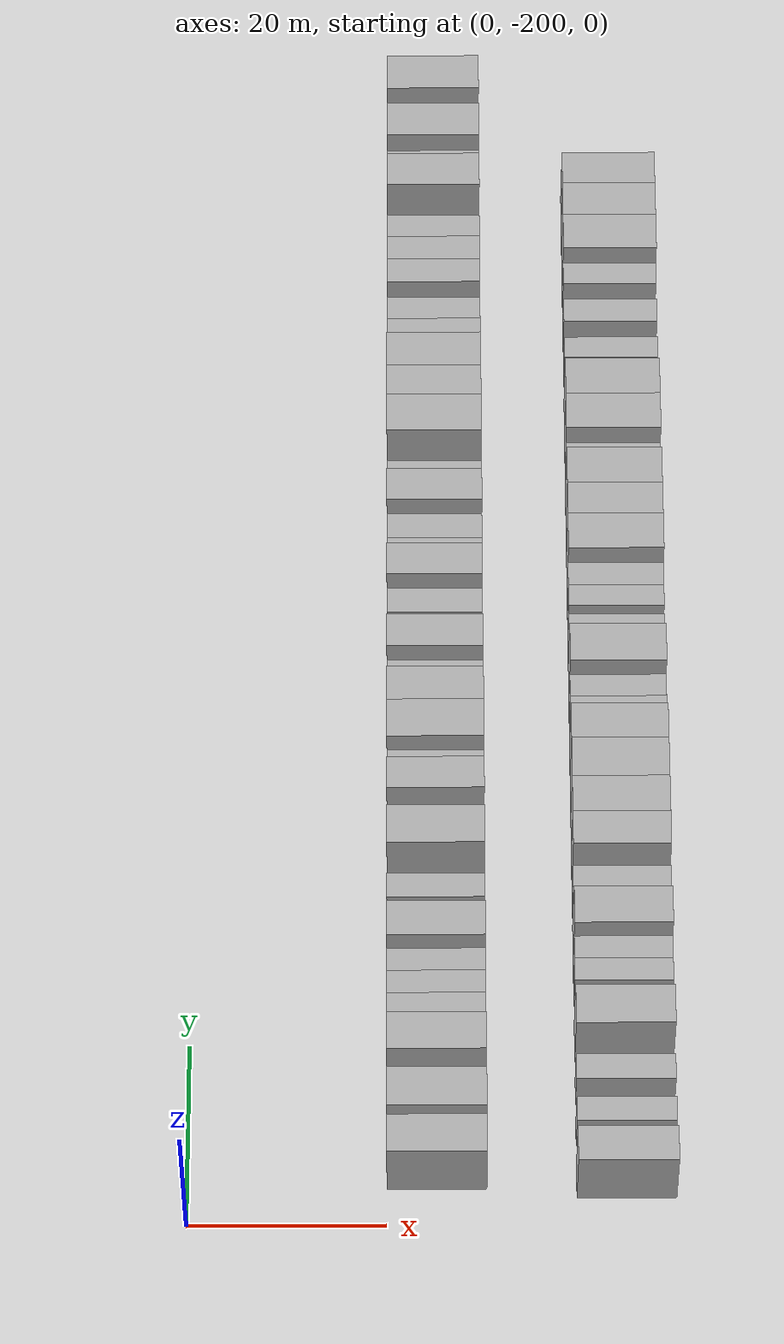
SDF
<sdf version="1.6">
 <world name="default">
  <model name="building_1">
   <static>1</static>
   <pose>25.0000 -193.9581 0 0.000000 0.000000 0.000000</pose>
   <link name="link">
    <pose>0 0 4.50 0 0 0</pose>
    <collision name="collision"><geometry><box><size>10.0000 4.0837 9.0000</size></box></geometry></collision>
    <visual name="visual">
     <cast_shadows>0</cast_shadows>
     <geometry><box><size>10.0000 4.0837 9.0000</size></box></geometry>
     <material>
      <script>
       <uri>model://HANNAS_wall/materials/scripts</uri>
       <uri>model://HANNAS_wall/materials/textures</uri>
       <name>vrc/HANNAS_wall</name>
      </script>
     </material>
    </visual>
   </link>
  </model>
  <model name="building_2">
   <static>1</static>
   <pose>25.0000 -188.7889 0 0.000000 0.000000 0.000000</pose>
   <link name="link">
    <pose>0 0 4.50 0 0 0</pose>
    <collision name="collision"><geometry><box><size>10.0000 4.2548 9.0000</size></box></geometry></collision>
    <visual name="visual">
     <cast_shadows>0</cast_shadows>
     <geometry><box><size>10.0000 4.2548 9.0000</size></box></geometry>
     <material>
      <script>
       <uri>model://HANNAS_wall/materials/scripts</uri>
       <uri>model://HANNAS_wall/materials/textures</uri>
       <name>vrc/HANNAS_wall</name>
      </script>
     </material>
    </visual>
   </link>
  </model>
  <model name="building_3">
   <static>1</static>
   <pose>25.0000 -182.6277 0 0.000000 0.000000 0.000000</pose>
   <link name="link">
    <pose>0 0 4.50 0 0 0</pose>
    <collision name="collision"><geometry><box><size>10.0000 4.0676 9.0000</size></box></geometry></collision>
    <visual name="visual">
     <cast_shadows>0</cast_shadows>
     <geometry><box><size>10.0000 4.0676 9.0000</size></box></geometry>
     <material>
      <script>
       <uri>model://HANNAS_wall/materials/scripts</uri>
       <uri>model://HANNAS_wall/materials/textures</uri>
       <name>vrc/HANNAS_wall</name>
      </script>
     </material>
    </visual>
   </link>
  </model>
  <model name="building_4">
   <static>1</static>
   <pose>25.0000 -178.2553 0 0.000000 0.000000 0.000000</pose>
   <link name="link">
    <pose>0 0 3.00 0 0 0</pose>
    <collision name="collision"><geometry><box><size>10.0000 2.6771 6.0000</size></box></geometry></collision>
    <visual name="visual">
     <cast_shadows>0</cast_shadows>
     <geometry><box><size>10.0000 2.6771 6.0000</size></box></geometry>
     <material>
      <script>
       <uri>model://HANNAS_wall/materials/scripts</uri>
       <uri>model://HANNAS_wall/materials/textures</uri>
       <name>vrc/HANNAS_wall</name>
      </script>
     </material>
    </visual>
   </link>
  </model>
  <model name="building_5">
   <static>1</static>
   <pose>25.0000 -175.6578 0 0.000000 0.000000 0.000000</pose>
   <link name="link">
    <pose>0 0 3.00 0 0 0</pose>
    <collision name="collision"><geometry><box><size>10.0000 2.5181 6.0000</size></box></geometry></collision>
    <visual name="visual">
     <cast_shadows>0</cast_shadows>
     <geometry><box><size>10.0000 2.5181 6.0000</size></box></geometry>
     <material>
      <script>
       <uri>model://HANNAS_wall/materials/scripts</uri>
       <uri>model://HANNAS_wall/materials/textures</uri>
       <name>vrc/HANNAS_wall</name>
      </script>
     </material>
    </visual>
   </link>
  </model>
  <model name="building_6">
   <static>1</static>
   <pose>25.0000 -173.1429 0 0.000000 0.000000 0.000000</pose>
   <link name="link">
    <pose>0 0 3.00 0 0 0</pose>
    <collision name="collision"><geometry><box><size>10.0000 2.5117 6.0000</size></box></geometry></collision>
    <visual name="visual">
     <cast_shadows>0</cast_shadows>
     <geometry><box><size>10.0000 2.5117 6.0000</size></box></geometry>
     <material>
      <script>
       <uri>model://HANNAS_wall/materials/scripts</uri>
       <uri>model://HANNAS_wall/materials/textures</uri>
       <name>vrc/HANNAS_wall</name>
      </script>
     </material>
    </visual>
   </link>
  </model>
  <model name="building_7">
   <static>1</static>
   <pose>25.0000 -169.9557 0 0.000000 0.000000 0.000000</pose>
   <link name="link">
    <pose>0 0 4.50 0 0 0</pose>
    <collision name="collision"><geometry><box><size>10.0000 3.8626 9.0000</size></box></geometry></collision>
    <visual name="visual">
     <cast_shadows>0</cast_shadows>
     <geometry><box><size>10.0000 3.8626 9.0000</size></box></geometry>
     <material>
      <script>
       <uri>model://HANNAS_wall/materials/scripts</uri>
       <uri>model://HANNAS_wall/materials/textures</uri>
       <name>vrc/HANNAS_wall</name>
      </script>
     </material>
    </visual>
   </link>
  </model>
  <model name="building_8">
   <static>1</static>
   <pose>25.0000 -164.6663 0 0.000000 0.000000 0.000000</pose>
   <link name="link">
    <pose>0 0 3.00 0 0 0</pose>
    <collision name="collision"><geometry><box><size>10.0000 2.7162 6.0000</size></box></geometry></collision>
    <visual name="visual">
     <cast_shadows>0</cast_shadows>
     <geometry><box><size>10.0000 2.7162 6.0000</size></box></geometry>
     <material>
      <script>
       <uri>model://HANNAS_wall/materials/scripts</uri>
       <uri>model://HANNAS_wall/materials/textures</uri>
       <name>vrc/HANNAS_wall</name>
      </script>
     </material>
    </visual>
   </link>
  </model>
  <model name="building_9">
   <static>1</static>
   <pose>25.0000 -159.1371 0 0.000000 0.000000 0.000000</pose>
   <link name="link">
    <pose>0 0 4.50 0 0 0</pose>
    <collision name="collision"><geometry><box><size>10.0000 4.3422 9.0000</size></box></geometry></collision>
    <visual name="visual">
     <cast_shadows>0</cast_shadows>
     <geometry><box><size>10.0000 4.3422 9.0000</size></box></geometry>
     <material>
      <script>
       <uri>model://HANNAS_wall/materials/scripts</uri>
       <uri>model://HANNAS_wall/materials/textures</uri>
       <name>vrc/HANNAS_wall</name>
      </script>
     </material>
    </visual>
   </link>
  </model>
  <model name="building_10">
   <static>1</static>
   <pose>25.0000 -153.1617 0 0.000000 0.000000 0.000000</pose>
   <link name="link">
    <pose>0 0 4.50 0 0 0</pose>
    <collision name="collision"><geometry><box><size>10.0000 3.6087 9.0000</size></box></geometry></collision>
    <visual name="visual">
     <cast_shadows>0</cast_shadows>
     <geometry><box><size>10.0000 3.6087 9.0000</size></box></geometry>
     <material>
      <script>
       <uri>model://HANNAS_wall/materials/scripts</uri>
       <uri>model://HANNAS_wall/materials/textures</uri>
       <name>vrc/HANNAS_wall</name>
      </script>
     </material>
    </visual>
   </link>
  </model>
  <model name="building_11">
   <static>1</static>
   <pose>25.0000 -150.1485 0 0.000000 0.000000 0.000000</pose>
   <link name="link">
    <pose>0 0 3.00 0 0 0</pose>
    <collision name="collision"><geometry><box><size>10.0000 2.4176 6.0000</size></box></geometry></collision>
    <visual name="visual">
     <cast_shadows>0</cast_shadows>
     <geometry><box><size>10.0000 2.4176 6.0000</size></box></geometry>
     <material>
      <script>
       <uri>model://HANNAS_wall/materials/scripts</uri>
       <uri>model://HANNAS_wall/materials/textures</uri>
       <name>vrc/HANNAS_wall</name>
      </script>
     </material>
    </visual>
   </link>
  </model>
  <model name="building_12">
   <static>1</static>
   <pose>25.0000 -146.7656 0 0.000000 0.000000 0.000000</pose>
   <link name="link">
    <pose>0 0 4.50 0 0 0</pose>
    <collision name="collision"><geometry><box><size>10.0000 4.3481 9.0000</size></box></geometry></collision>
    <visual name="visual">
     <cast_shadows>0</cast_shadows>
     <geometry><box><size>10.0000 4.3481 9.0000</size></box></geometry>
     <material>
      <script>
       <uri>model://HANNAS_wall/materials/scripts</uri>
       <uri>model://HANNAS_wall/materials/textures</uri>
       <name>vrc/HANNAS_wall</name>
      </script>
     </material>
    </visual>
   </link>
  </model>
  <model name="building_13">
   <static>1</static>
   <pose>25.0000 -142.6385 0 0.000000 0.000000 0.000000</pose>
   <link name="link">
    <pose>0 0 4.50 0 0 0</pose>
    <collision name="collision"><geometry><box><size>10.0000 3.9062 9.0000</size></box></geometry></collision>
    <visual name="visual">
     <cast_shadows>0</cast_shadows>
     <geometry><box><size>10.0000 3.9062 9.0000</size></box></geometry>
     <material>
      <script>
       <uri>model://HANNAS_wall/materials/scripts</uri>
       <uri>model://HANNAS_wall/materials/textures</uri>
       <name>vrc/HANNAS_wall</name>
      </script>
     </material>
    </visual>
   </link>
  </model>
  <model name="building_14">
   <static>1</static>
   <pose>25.0000 -139.4596 0 0.000000 0.000000 0.000000</pose>
   <link name="link">
    <pose>0 0 3.00 0 0 0</pose>
    <collision name="collision"><geometry><box><size>10.0000 2.4516 6.0000</size></box></geometry></collision>
    <visual name="visual">
     <cast_shadows>0</cast_shadows>
     <geometry><box><size>10.0000 2.4516 6.0000</size></box></geometry>
     <material>
      <script>
       <uri>model://HANNAS_wall/materials/scripts</uri>
       <uri>model://HANNAS_wall/materials/textures</uri>
       <name>vrc/HANNAS_wall</name>
      </script>
     </material>
    </visual>
   </link>
  </model>
  <model name="building_15">
   <static>1</static>
   <pose>25.0000 -136.3503 0 0.000000 0.000000 0.000000</pose>
   <link name="link">
    <pose>0 0 4.50 0 0 0</pose>
    <collision name="collision"><geometry><box><size>10.0000 3.7671 9.0000</size></box></geometry></collision>
    <visual name="visual">
     <cast_shadows>0</cast_shadows>
     <geometry><box><size>10.0000 3.7671 9.0000</size></box></geometry>
     <material>
      <script>
       <uri>model://HANNAS_wall/materials/scripts</uri>
       <uri>model://HANNAS_wall/materials/textures</uri>
       <name>vrc/HANNAS_wall</name>
      </script>
     </material>
    </visual>
   </link>
  </model>
  <model name="building_16">
   <static>1</static>
   <pose>25.0000 -131.0137 0 0.000000 0.000000 0.000000</pose>
   <link name="link">
    <pose>0 0 3.00 0 0 0</pose>
    <collision name="collision"><geometry><box><size>10.0000 2.9060 6.0000</size></box></geometry></collision>
    <visual name="visual">
     <cast_shadows>0</cast_shadows>
     <geometry><box><size>10.0000 2.9060 6.0000</size></box></geometry>
     <material>
      <script>
       <uri>model://HANNAS_wall/materials/scripts</uri>
       <uri>model://HANNAS_wall/materials/textures</uri>
       <name>vrc/HANNAS_wall</name>
      </script>
     </material>
    </visual>
   </link>
  </model>
  <model name="building_17">
   <static>1</static>
   <pose>25.0000 -127.7043 0 0.000000 0.000000 0.000000</pose>
   <link name="link">
    <pose>0 0 4.50 0 0 0</pose>
    <collision name="collision"><geometry><box><size>10.0000 3.7127 9.0000</size></box></geometry></collision>
    <visual name="visual">
     <cast_shadows>0</cast_shadows>
     <geometry><box><size>10.0000 3.7127 9.0000</size></box></geometry>
     <material>
      <script>
       <uri>model://HANNAS_wall/materials/scripts</uri>
       <uri>model://HANNAS_wall/materials/textures</uri>
       <name>vrc/HANNAS_wall</name>
      </script>
     </material>
    </visual>
   </link>
  </model>
  <model name="building_18">
   <static>1</static>
   <pose>25.0000 -124.6156 0 0.000000 0.000000 0.000000</pose>
   <link name="link">
    <pose>0 0 3.00 0 0 0</pose>
    <collision name="collision"><geometry><box><size>10.0000 2.4646 6.0000</size></box></geometry></collision>
    <visual name="visual">
     <cast_shadows>0</cast_shadows>
     <geometry><box><size>10.0000 2.4646 6.0000</size></box></geometry>
     <material>
      <script>
       <uri>model://HANNAS_wall/materials/scripts</uri>
       <uri>model://HANNAS_wall/materials/textures</uri>
       <name>vrc/HANNAS_wall</name>
      </script>
     </material>
    </visual>
   </link>
  </model>
  <model name="building_19">
   <static>1</static>
   <pose>25.0000 -121.9434 0 0.000000 0.000000 0.000000</pose>
   <link name="link">
    <pose>0 0 3.00 0 0 0</pose>
    <collision name="collision"><geometry><box><size>10.0000 2.8798 6.0000</size></box></geometry></collision>
    <visual name="visual">
     <cast_shadows>0</cast_shadows>
     <geometry><box><size>10.0000 2.8798 6.0000</size></box></geometry>
     <material>
      <script>
       <uri>model://HANNAS_wall/materials/scripts</uri>
       <uri>model://HANNAS_wall/materials/textures</uri>
       <name>vrc/HANNAS_wall</name>
      </script>
     </material>
    </visual>
   </link>
  </model>
  <model name="building_20">
   <static>1</static>
   <pose>25.0000 -118.6147 0 0.000000 0.000000 0.000000</pose>
   <link name="link">
    <pose>0 0 4.50 0 0 0</pose>
    <collision name="collision"><geometry><box><size>10.0000 3.7776 9.0000</size></box></geometry></collision>
    <visual name="visual">
     <cast_shadows>0</cast_shadows>
     <geometry><box><size>10.0000 3.7776 9.0000</size></box></geometry>
     <material>
      <script>
       <uri>model://HANNAS_wall/materials/scripts</uri>
       <uri>model://HANNAS_wall/materials/textures</uri>
       <name>vrc/HANNAS_wall</name>
      </script>
     </material>
    </visual>
   </link>
  </model>
  <model name="building_21">
   <static>1</static>
   <pose>25.0000 -115.3220 0 0.000000 0.000000 0.000000</pose>
   <link name="link">
    <pose>0 0 3.00 0 0 0</pose>
    <collision name="collision"><geometry><box><size>10.0000 2.8077 6.0000</size></box></geometry></collision>
    <visual name="visual">
     <cast_shadows>0</cast_shadows>
     <geometry><box><size>10.0000 2.8077 6.0000</size></box></geometry>
     <material>
      <script>
       <uri>model://HANNAS_wall/materials/scripts</uri>
       <uri>model://HANNAS_wall/materials/textures</uri>
       <name>vrc/HANNAS_wall</name>
      </script>
     </material>
    </visual>
   </link>
  </model>
  <model name="building_22">
   <static>1</static>
   <pose>25.0000 -109.6682 0 0.000000 0.000000 0.000000</pose>
   <link name="link">
    <pose>0 0 4.50 0 0 0</pose>
    <collision name="collision"><geometry><box><size>10.0000 4.4999 9.0000</size></box></geometry></collision>
    <visual name="visual">
     <cast_shadows>0</cast_shadows>
     <geometry><box><size>10.0000 4.4999 9.0000</size></box></geometry>
     <material>
      <script>
       <uri>model://HANNAS_wall/materials/scripts</uri>
       <uri>model://HANNAS_wall/materials/textures</uri>
       <name>vrc/HANNAS_wall</name>
      </script>
     </material>
    </visual>
   </link>
  </model>
  <model name="building_23">
   <static>1</static>
   <pose>25.0000 -105.5826 0 0.000000 0.000000 0.000000</pose>
   <link name="link">
    <pose>0 0 4.50 0 0 0</pose>
    <collision name="collision"><geometry><box><size>10.0000 3.6711 9.0000</size></box></geometry></collision>
    <visual name="visual">
     <cast_shadows>0</cast_shadows>
     <geometry><box><size>10.0000 3.6711 9.0000</size></box></geometry>
     <material>
      <script>
       <uri>model://HANNAS_wall/materials/scripts</uri>
       <uri>model://HANNAS_wall/materials/textures</uri>
       <name>vrc/HANNAS_wall</name>
      </script>
     </material>
    </visual>
   </link>
  </model>
  <model name="building_24">
   <static>1</static>
   <pose>25.0000 -101.6881 0 0.000000 0.000000 0.000000</pose>
   <link name="link">
    <pose>0 0 4.50 0 0 0</pose>
    <collision name="collision"><geometry><box><size>10.0000 4.1179 9.0000</size></box></geometry></collision>
    <visual name="visual">
     <cast_shadows>0</cast_shadows>
     <geometry><box><size>10.0000 4.1179 9.0000</size></box></geometry>
     <material>
      <script>
       <uri>model://HANNAS_wall/materials/scripts</uri>
       <uri>model://HANNAS_wall/materials/textures</uri>
       <name>vrc/HANNAS_wall</name>
      </script>
     </material>
    </visual>
   </link>
  </model>
  <model name="building_25">
   <static>1</static>
   <pose>25.0000 -97.2789 0 0.000000 0.000000 0.000000</pose>
   <link name="link">
    <pose>0 0 3.00 0 0 0</pose>
    <collision name="collision"><geometry><box><size>10.0000 2.7006 6.0000</size></box></geometry></collision>
    <visual name="visual">
     <cast_shadows>0</cast_shadows>
     <geometry><box><size>10.0000 2.7006 6.0000</size></box></geometry>
     <material>
      <script>
       <uri>model://HANNAS_wall/materials/scripts</uri>
       <uri>model://HANNAS_wall/materials/textures</uri>
       <name>vrc/HANNAS_wall</name>
      </script>
     </material>
    </visual>
   </link>
  </model>
  <model name="building_26">
   <static>1</static>
   <pose>25.0000 -94.5722 0 0.000000 0.000000 0.000000</pose>
   <link name="link">
    <pose>0 0 3.00 0 0 0</pose>
    <collision name="collision"><geometry><box><size>10.0000 2.7128 6.0000</size></box></geometry></collision>
    <visual name="visual">
     <cast_shadows>0</cast_shadows>
     <geometry><box><size>10.0000 2.7128 6.0000</size></box></geometry>
     <material>
      <script>
       <uri>model://HANNAS_wall/materials/scripts</uri>
       <uri>model://HANNAS_wall/materials/textures</uri>
       <name>vrc/HANNAS_wall</name>
      </script>
     </material>
    </visual>
   </link>
  </model>
  <model name="building_27">
   <static>1</static>
   <pose>25.0000 -89.7461 0 0.000000 0.000000 0.000000</pose>
   <link name="link">
    <pose>0 0 3.00 0 0 0</pose>
    <collision name="collision"><geometry><box><size>10.0000 2.9394 6.0000</size></box></geometry></collision>
    <visual name="visual">
     <cast_shadows>0</cast_shadows>
     <geometry><box><size>10.0000 2.9394 6.0000</size></box></geometry>
     <material>
      <script>
       <uri>model://HANNAS_wall/materials/scripts</uri>
       <uri>model://HANNAS_wall/materials/textures</uri>
       <name>vrc/HANNAS_wall</name>
      </script>
     </material>
    </visual>
   </link>
  </model>
  <model name="building_28">
   <static>1</static>
   <pose>25.0000 -86.8106 0 0.000000 0.000000 0.000000</pose>
   <link name="link">
    <pose>0 0 3.00 0 0 0</pose>
    <collision name="collision"><geometry><box><size>10.0000 2.9317 6.0000</size></box></geometry></collision>
    <visual name="visual">
     <cast_shadows>0</cast_shadows>
     <geometry><box><size>10.0000 2.9317 6.0000</size></box></geometry>
     <material>
      <script>
       <uri>model://HANNAS_wall/materials/scripts</uri>
       <uri>model://HANNAS_wall/materials/textures</uri>
       <name>vrc/HANNAS_wall</name>
      </script>
     </material>
    </visual>
   </link>
  </model>
  <model name="building_29">
   <static>1</static>
   <pose>25.0000 -83.9705 0 0.000000 0.000000 0.000000</pose>
   <link name="link">
    <pose>0 0 3.00 0 0 0</pose>
    <collision name="collision"><geometry><box><size>10.0000 2.7484 6.0000</size></box></geometry></collision>
    <visual name="visual">
     <cast_shadows>0</cast_shadows>
     <geometry><box><size>10.0000 2.7484 6.0000</size></box></geometry>
     <material>
      <script>
       <uri>model://HANNAS_wall/materials/scripts</uri>
       <uri>model://HANNAS_wall/materials/textures</uri>
       <name>vrc/HANNAS_wall</name>
      </script>
     </material>
    </visual>
   </link>
  </model>
  <model name="building_30">
   <static>1</static>
   <pose>25.0000 -78.5690 0 0.000000 0.000000 0.000000</pose>
   <link name="link">
    <pose>0 0 4.50 0 0 0</pose>
    <collision name="collision"><geometry><box><size>10.0000 4.0546 9.0000</size></box></geometry></collision>
    <visual name="visual">
     <cast_shadows>0</cast_shadows>
     <geometry><box><size>10.0000 4.0546 9.0000</size></box></geometry>
     <material>
      <script>
       <uri>model://HANNAS_wall/materials/scripts</uri>
       <uri>model://HANNAS_wall/materials/textures</uri>
       <name>vrc/HANNAS_wall</name>
      </script>
     </material>
    </visual>
   </link>
  </model>
  <model name="building_31">
   <static>1</static>
   <pose>25.0000 -75.3342 0 0.000000 0.000000 0.000000</pose>
   <link name="link">
    <pose>0 0 3.00 0 0 0</pose>
    <collision name="collision"><geometry><box><size>10.0000 2.4149 6.0000</size></box></geometry></collision>
    <visual name="visual">
     <cast_shadows>0</cast_shadows>
     <geometry><box><size>10.0000 2.4149 6.0000</size></box></geometry>
     <material>
      <script>
       <uri>model://HANNAS_wall/materials/scripts</uri>
       <uri>model://HANNAS_wall/materials/textures</uri>
       <name>vrc/HANNAS_wall</name>
      </script>
     </material>
    </visual>
   </link>
  </model>
  <model name="building_32">
   <static>1</static>
   <pose>25.0000 -72.0276 0 0.000000 0.000000 0.000000</pose>
   <link name="link">
    <pose>0 0 4.50 0 0 0</pose>
    <collision name="collision"><geometry><box><size>10.0000 4.1984 9.0000</size></box></geometry></collision>
    <visual name="visual">
     <cast_shadows>0</cast_shadows>
     <geometry><box><size>10.0000 4.1984 9.0000</size></box></geometry>
     <material>
      <script>
       <uri>model://HANNAS_wall/materials/scripts</uri>
       <uri>model://HANNAS_wall/materials/textures</uri>
       <name>vrc/HANNAS_wall</name>
      </script>
     </material>
    </visual>
   </link>
  </model>
  <model name="building_33">
   <static>1</static>
   <pose>25.0000 -65.7691 0 0.000000 0.000000 0.000000</pose>
   <link name="link">
    <pose>0 0 4.50 0 0 0</pose>
    <collision name="collision"><geometry><box><size>10.0000 4.3185 9.0000</size></box></geometry></collision>
    <visual name="visual">
     <cast_shadows>0</cast_shadows>
     <geometry><box><size>10.0000 4.3185 9.0000</size></box></geometry>
     <material>
      <script>
       <uri>model://HANNAS_wall/materials/scripts</uri>
       <uri>model://HANNAS_wall/materials/textures</uri>
       <name>vrc/HANNAS_wall</name>
      </script>
     </material>
    </visual>
   </link>
  </model>
  <model name="building_100">
   <static>1</static>
   <pose>44.0000 -195.1163 0 0.000000 0.000000 0.000000</pose>
   <link name="link">
    <pose>0 0 4.50 0 0 0</pose>
    <collision name="collision"><geometry><box><size>10.0000 3.7673 9.0000</size></box></geometry></collision>
    <visual name="visual">
     <cast_shadows>0</cast_shadows>
     <geometry><box><size>10.0000 3.7673 9.0000</size></box></geometry>
     <material>
      <script>
       <uri>model://HANNAS_wall/materials/scripts</uri>
       <uri>model://HANNAS_wall/materials/textures</uri>
       <name>vrc/HANNAS_wall</name>
      </script>
     </material>
    </visual>
   </link>
  </model>
  <model name="building_101">
   <static>1</static>
   <pose>44.0000 -189.9316 0 0.000000 0.000000 0.000000</pose>
   <link name="link">
    <pose>0 0 3.00 0 0 0</pose>
    <collision name="collision"><geometry><box><size>10.0000 2.6021 6.0000</size></box></geometry></collision>
    <visual name="visual">
     <cast_shadows>0</cast_shadows>
     <geometry><box><size>10.0000 2.6021 6.0000</size></box></geometry>
     <material>
      <script>
       <uri>model://HANNAS_wall/materials/scripts</uri>
       <uri>model://HANNAS_wall/materials/textures</uri>
       <name>vrc/HANNAS_wall</name>
      </script>
     </material>
    </visual>
   </link>
  </model>
  <model name="building_102">
   <static>1</static>
   <pose>44.0000 -185.2393 0 0.000000 0.000000 0.000000</pose>
   <link name="link">
    <pose>0 0 3.00 0 0 0</pose>
    <collision name="collision"><geometry><box><size>10.0000 2.7824 6.0000</size></box></geometry></collision>
    <visual name="visual">
     <cast_shadows>0</cast_shadows>
     <geometry><box><size>10.0000 2.7824 6.0000</size></box></geometry>
     <material>
      <script>
       <uri>model://HANNAS_wall/materials/scripts</uri>
       <uri>model://HANNAS_wall/materials/textures</uri>
       <name>vrc/HANNAS_wall</name>
      </script>
     </material>
    </visual>
   </link>
  </model>
  <model name="building_103">
   <static>1</static>
   <pose>44.0000 -179.7088 0 0.000000 0.000000 0.000000</pose>
   <link name="link">
    <pose>0 0 4.50 0 0 0</pose>
    <collision name="collision"><geometry><box><size>10.0000 4.2787 9.0000</size></box></geometry></collision>
    <visual name="visual">
     <cast_shadows>0</cast_shadows>
     <geometry><box><size>10.0000 4.2787 9.0000</size></box></geometry>
     <material>
      <script>
       <uri>model://HANNAS_wall/materials/scripts</uri>
       <uri>model://HANNAS_wall/materials/textures</uri>
       <name>vrc/HANNAS_wall</name>
      </script>
     </material>
    </visual>
   </link>
  </model>
  <model name="building_104">
   <static>1</static>
   <pose>44.0000 -174.3095 0 0.000000 0.000000 0.000000</pose>
   <link name="link">
    <pose>0 0 3.00 0 0 0</pose>
    <collision name="collision"><geometry><box><size>10.0000 2.5197 6.0000</size></box></geometry></collision>
    <visual name="visual">
     <cast_shadows>0</cast_shadows>
     <geometry><box><size>10.0000 2.5197 6.0000</size></box></geometry>
     <material>
      <script>
       <uri>model://HANNAS_wall/materials/scripts</uri>
       <uri>model://HANNAS_wall/materials/textures</uri>
       <name>vrc/HANNAS_wall</name>
      </script>
     </material>
    </visual>
   </link>
  </model>
  <model name="building_105">
   <static>1</static>
   <pose>44.0000 -171.8063 0 0.000000 0.000000 0.000000</pose>
   <link name="link">
    <pose>0 0 3.00 0 0 0</pose>
    <collision name="collision"><geometry><box><size>10.0000 2.4869 6.0000</size></box></geometry></collision>
    <visual name="visual">
     <cast_shadows>0</cast_shadows>
     <geometry><box><size>10.0000 2.4869 6.0000</size></box></geometry>
     <material>
      <script>
       <uri>model://HANNAS_wall/materials/scripts</uri>
       <uri>model://HANNAS_wall/materials/textures</uri>
       <name>vrc/HANNAS_wall</name>
      </script>
     </material>
    </visual>
   </link>
  </model>
  <model name="building_106">
   <static>1</static>
   <pose>44.0000 -168.4883 0 0.000000 0.000000 0.000000</pose>
   <link name="link">
    <pose>0 0 4.50 0 0 0</pose>
    <collision name="collision"><geometry><box><size>10.0000 4.1490 9.0000</size></box></geometry></collision>
    <visual name="visual">
     <cast_shadows>0</cast_shadows>
     <geometry><box><size>10.0000 4.1490 9.0000</size></box></geometry>
     <material>
      <script>
       <uri>model://HANNAS_wall/materials/scripts</uri>
       <uri>model://HANNAS_wall/materials/textures</uri>
       <name>vrc/HANNAS_wall</name>
      </script>
     </material>
    </visual>
   </link>
  </model>
  <model name="building_107">
   <static>1</static>
   <pose>44.0000 -163.9623 0 0.000000 0.000000 0.000000</pose>
   <link name="link">
    <pose>0 0 3.00 0 0 0</pose>
    <collision name="collision"><geometry><box><size>10.0000 2.9031 6.0000</size></box></geometry></collision>
    <visual name="visual">
     <cast_shadows>0</cast_shadows>
     <geometry><box><size>10.0000 2.9031 6.0000</size></box></geometry>
     <material>
      <script>
       <uri>model://HANNAS_wall/materials/scripts</uri>
       <uri>model://HANNAS_wall/materials/textures</uri>
       <name>vrc/HANNAS_wall</name>
      </script>
     </material>
    </visual>
   </link>
  </model>
  <model name="building_108">
   <static>1</static>
   <pose>44.0000 -159.6307 0 0.000000 0.000000 0.000000</pose>
   <link name="link">
    <pose>0 0 4.50 0 0 0</pose>
    <collision name="collision"><geometry><box><size>10.0000 3.7600 9.0000</size></box></geometry></collision>
    <visual name="visual">
     <cast_shadows>0</cast_shadows>
     <geometry><box><size>10.0000 3.7600 9.0000</size></box></geometry>
     <material>
      <script>
       <uri>model://HANNAS_wall/materials/scripts</uri>
       <uri>model://HANNAS_wall/materials/textures</uri>
       <name>vrc/HANNAS_wall</name>
      </script>
     </material>
    </visual>
   </link>
  </model>
  <model name="building_109">
   <static>1</static>
   <pose>44.0000 -155.6896 0 0.000000 0.000000 0.000000</pose>
   <link name="link">
    <pose>0 0 4.50 0 0 0</pose>
    <collision name="collision"><geometry><box><size>10.0000 4.1222 9.0000</size></box></geometry></collision>
    <visual name="visual">
     <cast_shadows>0</cast_shadows>
     <geometry><box><size>10.0000 4.1222 9.0000</size></box></geometry>
     <material>
      <script>
       <uri>model://HANNAS_wall/materials/scripts</uri>
       <uri>model://HANNAS_wall/materials/textures</uri>
       <name>vrc/HANNAS_wall</name>
      </script>
     </material>
    </visual>
   </link>
  </model>
  <model name="building_110">
   <static>1</static>
   <pose>44.0000 -151.3921 0 0.000000 0.000000 0.000000</pose>
   <link name="link">
    <pose>0 0 4.50 0 0 0</pose>
    <collision name="collision"><geometry><box><size>10.0000 4.4729 9.0000</size></box></geometry></collision>
    <visual name="visual">
     <cast_shadows>0</cast_shadows>
     <geometry><box><size>10.0000 4.4729 9.0000</size></box></geometry>
     <material>
      <script>
       <uri>model://HANNAS_wall/materials/scripts</uri>
       <uri>model://HANNAS_wall/materials/textures</uri>
       <name>vrc/HANNAS_wall</name>
      </script>
     </material>
    </visual>
   </link>
  </model>
  <model name="building_111">
   <static>1</static>
   <pose>44.0000 -147.1420 0 0.000000 0.000000 0.000000</pose>
   <link name="link">
    <pose>0 0 4.50 0 0 0</pose>
    <collision name="collision"><geometry><box><size>10.0000 4.0273 9.0000</size></box></geometry></collision>
    <visual name="visual">
     <cast_shadows>0</cast_shadows>
     <geometry><box><size>10.0000 4.0273 9.0000</size></box></geometry>
     <material>
      <script>
       <uri>model://HANNAS_wall/materials/scripts</uri>
       <uri>model://HANNAS_wall/materials/textures</uri>
       <name>vrc/HANNAS_wall</name>
      </script>
     </material>
    </visual>
   </link>
  </model>
  <model name="building_112">
   <static>1</static>
   <pose>44.0000 -143.8492 0 0.000000 0.000000 0.000000</pose>
   <link name="link">
    <pose>0 0 3.00 0 0 0</pose>
    <collision name="collision"><geometry><box><size>10.0000 2.5583 6.0000</size></box></geometry></collision>
    <visual name="visual">
     <cast_shadows>0</cast_shadows>
     <geometry><box><size>10.0000 2.5583 6.0000</size></box></geometry>
     <material>
      <script>
       <uri>model://HANNAS_wall/materials/scripts</uri>
       <uri>model://HANNAS_wall/materials/textures</uri>
       <name>vrc/HANNAS_wall</name>
      </script>
     </material>
    </visual>
   </link>
  </model>
  <model name="building_113">
   <static>1</static>
   <pose>44.0000 -141.2943 0 0.000000 0.000000 0.000000</pose>
   <link name="link">
    <pose>0 0 3.00 0 0 0</pose>
    <collision name="collision"><geometry><box><size>10.0000 2.5514 6.0000</size></box></geometry></collision>
    <visual name="visual">
     <cast_shadows>0</cast_shadows>
     <geometry><box><size>10.0000 2.5514 6.0000</size></box></geometry>
     <material>
      <script>
       <uri>model://HANNAS_wall/materials/scripts</uri>
       <uri>model://HANNAS_wall/materials/textures</uri>
       <name>vrc/HANNAS_wall</name>
      </script>
     </material>
    </visual>
   </link>
  </model>
  <model name="building_114">
   <static>1</static>
   <pose>44.0000 -137.8211 0 0.000000 0.000000 0.000000</pose>
   <link name="link">
    <pose>0 0 4.50 0 0 0</pose>
    <collision name="collision"><geometry><box><size>10.0000 4.3950 9.0000</size></box></geometry></collision>
    <visual name="visual">
     <cast_shadows>0</cast_shadows>
     <geometry><box><size>10.0000 4.3950 9.0000</size></box></geometry>
     <material>
      <script>
       <uri>model://HANNAS_wall/materials/scripts</uri>
       <uri>model://HANNAS_wall/materials/textures</uri>
       <name>vrc/HANNAS_wall</name>
      </script>
     </material>
    </visual>
   </link>
  </model>
  <model name="building_115">
   <static>1</static>
   <pose>44.0000 -134.1779 0 0.000000 0.000000 0.000000</pose>
   <link name="link">
    <pose>0 0 3.00 0 0 0</pose>
    <collision name="collision"><geometry><box><size>10.0000 2.8915 6.0000</size></box></geometry></collision>
    <visual name="visual">
     <cast_shadows>0</cast_shadows>
     <geometry><box><size>10.0000 2.8915 6.0000</size></box></geometry>
     <material>
      <script>
       <uri>model://HANNAS_wall/materials/scripts</uri>
       <uri>model://HANNAS_wall/materials/textures</uri>
       <name>vrc/HANNAS_wall</name>
      </script>
     </material>
    </visual>
   </link>
  </model>
  <model name="building_116">
   <static>1</static>
   <pose>44.0000 -130.4819 0 0.000000 0.000000 0.000000</pose>
   <link name="link">
    <pose>0 0 3.00 0 0 0</pose>
    <collision name="collision"><geometry><box><size>10.0000 2.5006 6.0000</size></box></geometry></collision>
    <visual name="visual">
     <cast_shadows>0</cast_shadows>
     <geometry><box><size>10.0000 2.5006 6.0000</size></box></geometry>
     <material>
      <script>
       <uri>model://HANNAS_wall/materials/scripts</uri>
       <uri>model://HANNAS_wall/materials/textures</uri>
       <name>vrc/HANNAS_wall</name>
      </script>
     </material>
    </visual>
   </link>
  </model>
  <model name="building_117">
   <static>1</static>
   <pose>44.0000 -127.8572 0 0.000000 0.000000 0.000000</pose>
   <link name="link">
    <pose>0 0 3.00 0 0 0</pose>
    <collision name="collision"><geometry><box><size>10.0000 2.7488 6.0000</size></box></geometry></collision>
    <visual name="visual">
     <cast_shadows>0</cast_shadows>
     <geometry><box><size>10.0000 2.7488 6.0000</size></box></geometry>
     <material>
      <script>
       <uri>model://HANNAS_wall/materials/scripts</uri>
       <uri>model://HANNAS_wall/materials/textures</uri>
       <name>vrc/HANNAS_wall</name>
      </script>
     </material>
    </visual>
   </link>
  </model>
  <model name="building_118">
   <static>1</static>
   <pose>44.0000 -124.3684 0 0.000000 0.000000 0.000000</pose>
   <link name="link">
    <pose>0 0 4.50 0 0 0</pose>
    <collision name="collision"><geometry><box><size>10.0000 4.2287 9.0000</size></box></geometry></collision>
    <visual name="visual">
     <cast_shadows>0</cast_shadows>
     <geometry><box><size>10.0000 4.2287 9.0000</size></box></geometry>
     <material>
      <script>
       <uri>model://HANNAS_wall/materials/scripts</uri>
       <uri>model://HANNAS_wall/materials/textures</uri>
       <name>vrc/HANNAS_wall</name>
      </script>
     </material>
    </visual>
   </link>
  </model>
  <model name="building_119">
   <static>1</static>
   <pose>44.0000 -120.3580 0 0.000000 0.000000 0.000000</pose>
   <link name="link">
    <pose>0 0 4.50 0 0 0</pose>
    <collision name="collision"><geometry><box><size>10.0000 3.7922 9.0000</size></box></geometry></collision>
    <visual name="visual">
     <cast_shadows>0</cast_shadows>
     <geometry><box><size>10.0000 3.7922 9.0000</size></box></geometry>
     <material>
      <script>
       <uri>model://HANNAS_wall/materials/scripts</uri>
       <uri>model://HANNAS_wall/materials/textures</uri>
       <name>vrc/HANNAS_wall</name>
      </script>
     </material>
    </visual>
   </link>
  </model>
  <model name="building_120">
   <static>1</static>
   <pose>44.0000 -116.2890 0 0.000000 0.000000 0.000000</pose>
   <link name="link">
    <pose>0 0 4.50 0 0 0</pose>
    <collision name="collision"><geometry><box><size>10.0000 4.3458 9.0000</size></box></geometry></collision>
    <visual name="visual">
     <cast_shadows>0</cast_shadows>
     <geometry><box><size>10.0000 4.3458 9.0000</size></box></geometry>
     <material>
      <script>
       <uri>model://HANNAS_wall/materials/scripts</uri>
       <uri>model://HANNAS_wall/materials/textures</uri>
       <name>vrc/HANNAS_wall</name>
      </script>
     </material>
    </visual>
   </link>
  </model>
  <model name="building_121">
   <static>1</static>
   <pose>44.0000 -112.9095 0 0.000000 0.000000 0.000000</pose>
   <link name="link">
    <pose>0 0 3.00 0 0 0</pose>
    <collision name="collision"><geometry><box><size>10.0000 2.4133 6.0000</size></box></geometry></collision>
    <visual name="visual">
     <cast_shadows>0</cast_shadows>
     <geometry><box><size>10.0000 2.4133 6.0000</size></box></geometry>
     <material>
      <script>
       <uri>model://HANNAS_wall/materials/scripts</uri>
       <uri>model://HANNAS_wall/materials/textures</uri>
       <name>vrc/HANNAS_wall</name>
      </script>
     </material>
    </visual>
   </link>
  </model>
  <model name="building_122">
   <static>1</static>
   <pose>44.0000 -109.5280 0 0.000000 0.000000 0.000000</pose>
   <link name="link">
    <pose>0 0 4.50 0 0 0</pose>
    <collision name="collision"><geometry><box><size>10.0000 4.3497 9.0000</size></box></geometry></collision>
    <visual name="visual">
     <cast_shadows>0</cast_shadows>
     <geometry><box><size>10.0000 4.3497 9.0000</size></box></geometry>
     <material>
      <script>
       <uri>model://HANNAS_wall/materials/scripts</uri>
       <uri>model://HANNAS_wall/materials/textures</uri>
       <name>vrc/HANNAS_wall</name>
      </script>
     </material>
    </visual>
   </link>
  </model>
  <model name="building_123">
   <static>1</static>
   <pose>44.0000 -105.1488 0 0.000000 0.000000 0.000000</pose>
   <link name="link">
    <pose>0 0 4.50 0 0 0</pose>
    <collision name="collision"><geometry><box><size>10.0000 4.4086 9.0000</size></box></geometry></collision>
    <visual name="visual">
     <cast_shadows>0</cast_shadows>
     <geometry><box><size>10.0000 4.4086 9.0000</size></box></geometry>
     <material>
      <script>
       <uri>model://HANNAS_wall/materials/scripts</uri>
       <uri>model://HANNAS_wall/materials/textures</uri>
       <name>vrc/HANNAS_wall</name>
      </script>
     </material>
    </visual>
   </link>
  </model>
  <model name="building_124">
   <static>1</static>
   <pose>44.0000 -99.6629 0 0.000000 0.000000 0.000000</pose>
   <link name="link">
    <pose>0 0 3.00 0 0 0</pose>
    <collision name="collision"><geometry><box><size>10.0000 2.5632 6.0000</size></box></geometry></collision>
    <visual name="visual">
     <cast_shadows>0</cast_shadows>
     <geometry><box><size>10.0000 2.5632 6.0000</size></box></geometry>
     <material>
      <script>
       <uri>model://HANNAS_wall/materials/scripts</uri>
       <uri>model://HANNAS_wall/materials/textures</uri>
       <name>vrc/HANNAS_wall</name>
      </script>
     </material>
    </visual>
   </link>
  </model>
  <model name="building_125">
   <static>1</static>
   <pose>44.0000 -94.9541 0 0.000000 0.000000 0.000000</pose>
   <link name="link">
    <pose>0 0 3.00 0 0 0</pose>
    <collision name="collision"><geometry><box><size>10.0000 2.8545 6.0000</size></box></geometry></collision>
    <visual name="visual">
     <cast_shadows>0</cast_shadows>
     <geometry><box><size>10.0000 2.8545 6.0000</size></box></geometry>
     <material>
      <script>
       <uri>model://HANNAS_wall/materials/scripts</uri>
       <uri>model://HANNAS_wall/materials/textures</uri>
       <name>vrc/HANNAS_wall</name>
      </script>
     </material>
    </visual>
   </link>
  </model>
  <model name="building_126">
   <static>1</static>
   <pose>44.0000 -90.1957 0 0.000000 0.000000 0.000000</pose>
   <link name="link">
    <pose>0 0 3.00 0 0 0</pose>
    <collision name="collision"><geometry><box><size>10.0000 2.6624 6.0000</size></box></geometry></collision>
    <visual name="visual">
     <cast_shadows>0</cast_shadows>
     <geometry><box><size>10.0000 2.6624 6.0000</size></box></geometry>
     <material>
      <script>
       <uri>model://HANNAS_wall/materials/scripts</uri>
       <uri>model://HANNAS_wall/materials/textures</uri>
       <name>vrc/HANNAS_wall</name>
      </script>
     </material>
    </visual>
   </link>
  </model>
  <model name="building_127">
   <static>1</static>
   <pose>44.0000 -86.7122 0 0.000000 0.000000 0.000000</pose>
   <link name="link">
    <pose>0 0 4.50 0 0 0</pose>
    <collision name="collision"><geometry><box><size>10.0000 4.3044 9.0000</size></box></geometry></collision>
    <visual name="visual">
     <cast_shadows>0</cast_shadows>
     <geometry><box><size>10.0000 4.3044 9.0000</size></box></geometry>
     <material>
      <script>
       <uri>model://HANNAS_wall/materials/scripts</uri>
       <uri>model://HANNAS_wall/materials/textures</uri>
       <name>vrc/HANNAS_wall</name>
      </script>
     </material>
    </visual>
   </link>
  </model>
  <model name="building_128">
   <static>1</static>
   <pose>44.0000 -82.4925 0 0.000000 0.000000 0.000000</pose>
   <link name="link">
    <pose>0 0 4.50 0 0 0</pose>
    <collision name="collision"><geometry><box><size>10.0000 4.1350 9.0000</size></box></geometry></collision>
    <visual name="visual">
     <cast_shadows>0</cast_shadows>
     <geometry><box><size>10.0000 4.1350 9.0000</size></box></geometry>
     <material>
      <script>
       <uri>model://HANNAS_wall/materials/scripts</uri>
       <uri>model://HANNAS_wall/materials/textures</uri>
       <name>vrc/HANNAS_wall</name>
      </script>
     </material>
    </visual>
   </link>
  </model>
  <model name="building_129">
   <static>1</static>
   <pose>44.0000 -78.4603 0 0.000000 0.000000 0.000000</pose>
   <link name="link">
    <pose>0 0 4.50 0 0 0</pose>
    <collision name="collision"><geometry><box><size>10.0000 3.9294 9.0000</size></box></geometry></collision>
    <visual name="visual">
     <cast_shadows>0</cast_shadows>
     <geometry><box><size>10.0000 3.9294 9.0000</size></box></geometry>
     <material>
      <script>
       <uri>model://HANNAS_wall/materials/scripts</uri>
       <uri>model://HANNAS_wall/materials/textures</uri>
       <name>vrc/HANNAS_wall</name>
      </script>
     </material>
    </visual>
   </link>
  </model>
 </world>
</sdf>
